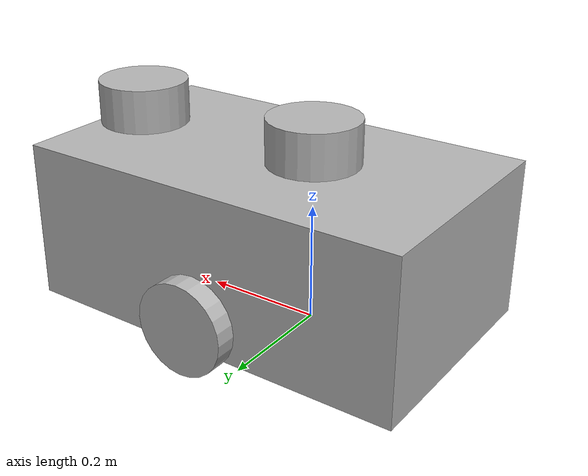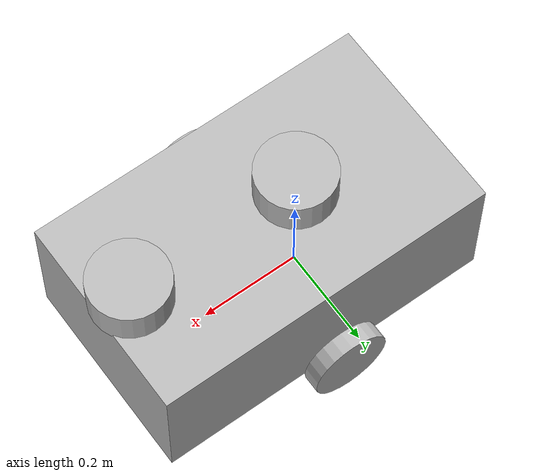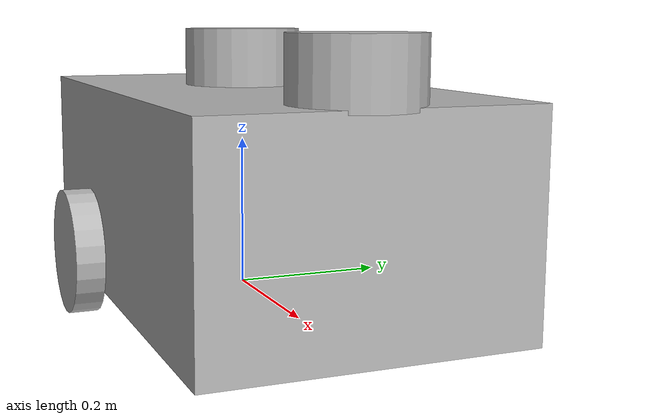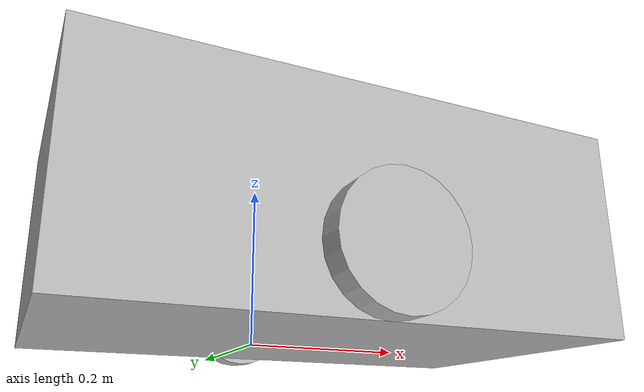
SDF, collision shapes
<sdf version='1.7'>
  <model name='cad_assembly_amr'>
    <link name='base_footprint'>
      <inertial>
        <pose>0.154135 0.128335 -0.030396 0 -0 0</pose>
        <mass>17.7243</mass>
        <inertia>
          <ixx>0.151726</ixx>
          <ixy>0</ixy>
          <ixz>0</ixz>
          <iyy>0.209426</iyy>
          <iyz>0</iyz>
          <izz>0.106435</izz>
        </inertia>
      </inertial>
      <collision name='base_footprint_fixed_joint_lump__base_link_collision'>
        <pose>0.075 0 0.14 0 -0 0</pose>
        <geometry>
          <box>
            <size>0.68 0.4 0.27</size>
          </box>
        </geometry>
      </collision>
      <collision name='base_footprint_fixed_joint_lump__imu_link_collision_1'>
        <pose>0 0 0.31 0 -0 0</pose>
        <geometry>
          <cylinder>
            <length>0.08</length>
            <radius>0.0767</radius>
          </cylinder>
        </geometry>
      </collision>
      <collision name='base_footprint_fixed_joint_lump__lidar_link_collision_2'>
        <pose>0.35 0 0.31 0 -0 0</pose>
        <geometry>
          <cylinder>
            <length>0.08</length>
            <radius>0.0767</radius>
          </cylinder>
        </geometry>
        <surface>
          <contact>
            <ode/>
          </contact>
          <friction>
            <ode/>
          </friction>
        </surface>
      </collision>
      <visual name='base_footprint_fixed_joint_lump__base_link_visual'>
        <pose>0 -0.031 0 0 -0 0</pose>
        <geometry>
          <mesh>
            <scale>1 1 1</scale>
            <uri>model://cad_assembly_amr/meshes/base_link.STL</uri>
          </mesh>
        </geometry>
      </visual>
      <visual name='base_footprint_fixed_joint_lump__imu_link_visual_1'>
        <pose>0 0 0.31 0 -0 0</pose>
        <geometry>
          <cylinder>
            <length>0.08</length>
            <radius>0.0767</radius>
          </cylinder>
        </geometry>
      </visual>
      <visual name='base_footprint_fixed_joint_lump__lidar_link_visual_2'>
        <pose>0.35 0 0.31 0 -0 0</pose>
        <geometry>
          <cylinder>
            <length>0.08</length>
            <radius>0.0767</radius>
          </cylinder>
        </geometry>
      </visual>
      <sensor name='head_hokuyo_sensor' type='gpu_ray'>
        <visualize>1</visualize>
        <update_rate>40</update_rate>
        <ray>
          <scan>
            <horizontal>
              <samples>720</samples>
              <resolution>1</resolution>
              <min_angle>-1.5708</min_angle>
              <max_angle>1.5708</max_angle>
            </horizontal>
          </scan>
          <range>
            <min>0.1</min>
            <max>30</max>
            <resolution>0.01</resolution>
          </range>
          <noise>
            <type>gaussian</type>
            <mean>0</mean>
            <stddev>0.01</stddev>
          </noise>
        </ray>
        <plugin name='gazebo_ros_head_hokuyo_controller' filename='libgazebo_ros_gpu_laser.so'>
          <topicName>/laser/scan</topicName>
          <frameName>lidar_link</frameName>
        </plugin>
        <pose>0.35 0 0.31 0 -0 0</pose>
      </sensor>
    </link>
    <joint name='left_joint' type='revolute'>
      <pose relative_to='base_footprint'>0.064918 -0.2 0.0767 0 -0 3.14</pose>
      <parent>base_footprint</parent>
      <child>wheel_l</child>
      <axis>
        <xyz>0 1 0</xyz>
        <limit>
          <lower>-1e+16</lower>
          <upper>1e+16</upper>
        </limit>
        <dynamics>
          <spring_reference>0</spring_reference>
          <spring_stiffness>0</spring_stiffness>
        </dynamics>
      </axis>
    </joint>
    <link name='wheel_l'>
      <pose relative_to='left_joint'>0 0 0 0 -0 0</pose>
      <inertial>
        <pose>0 0 0 0 -0 0</pose>
        <mass>1.1541</mass>
        <inertia>
          <ixx>0.0029866</ixx>
          <ixy>0</ixy>
          <ixz>0</ixz>
          <iyy>0.0016967</iyy>
          <iyz>0</iyz>
          <izz>0.0016788</izz>
        </inertia>
      </inertial>
      <collision name='wheel_l_collision'>
        <pose>0 0.042 0 1.57 -0 0</pose>
        <geometry>
          <cylinder>
            <length>0.035</length>
            <radius>0.0767</radius>
          </cylinder>
        </geometry>
      </collision>
      <visual name='wheel_l_visual'>
        <pose>0 0 0 0 -0 1.57</pose>
        <geometry>
          <mesh>
            <scale>1 1 1</scale>
            <uri>model://cad_assembly_amr/meshes/Wheel_2.STL</uri>
          </mesh>
        </geometry>
      </visual>
    </link>
    <joint name='right_joint' type='revolute'>
      <pose relative_to='base_footprint'>0.064918 0.2 0.0767 0 -0 0</pose>
      <parent>base_footprint</parent>
      <child>wheel_r</child>
      <axis>
        <xyz>0 -1 0</xyz>
        <limit>
          <lower>-3.1415</lower>
          <upper>3.1415</upper>
          <effort>30</effort>
          <velocity>5</velocity>
        </limit>
        <dynamics>
          <spring_reference>0</spring_reference>
          <spring_stiffness>0</spring_stiffness>
        </dynamics>
      </axis>
    </joint>
    <link name='wheel_r'>
      <pose relative_to='right_joint'>0 0 0 0 -0 0</pose>
      <inertial>
        <pose>0 0 0 0 -0 0</pose>
        <mass>1.1541</mass>
        <inertia>
          <ixx>0.0029866</ixx>
          <ixy>0</ixy>
          <ixz>0</ixz>
          <iyy>0.0016967</iyy>
          <iyz>0</iyz>
          <izz>0.0016788</izz>
        </inertia>
      </inertial>
      <collision name='wheel_r_collision'>
        <pose>0 0.042 0 1.57 -0 0</pose>
        <geometry>
          <cylinder>
            <length>0.035</length>
            <radius>0.0767</radius>
          </cylinder>
        </geometry>
      </collision>
      <visual name='wheel_r_visual'>
        <pose>0 0 0 0 -0 1.57</pose>
        <geometry>
          <mesh>
            <scale>1 1 1</scale>
            <uri>model://cad_assembly_amr/meshes/Wheel_2.STL</uri>
          </mesh>
        </geometry>
      </visual>
    </link>
    <static>0</static>
    <plugin name='differential_drive_controller' filename='libgazebo_ros_diff_drive.so'>
      <updateRate>40</updateRate>
      <leftJoint>left_joint</leftJoint>
      <rightJoint>right_joint</rightJoint>
      <wheelSeparation>0.4</wheelSeparation>
      <wheelDiameter>0.1534</wheelDiameter>
      <wheelAcceleration>1.0</wheelAcceleration>
      <wheelTorque>20</wheelTorque>
      <commandTopic>cmd_vel</commandTopic>
      <odometryTopic>odom</odometryTopic>
      <odometryFrame>odom</odometryFrame>
      <robotBaseFrame>base_footprint</robotBaseFrame>
      <odometrySource>1</odometrySource>
      <publishWheelTF>0</publishWheelTF>
      <publishOdom>0</publishOdom>
      <publishWheelJointState>0</publishWheelJointState>
      <legacyMode>0</legacyMode>
    </plugin>
    <plugin name='cad_assembly_amr_joint_state' filename='libgazebo_ros_joint_state_publisher.so'>
      <ros>
        <remapping>~/out:=joint_states</remapping>
      </ros>
      <update_rate>30</update_rate>
      <joint_name>left_joint</joint_name>
      <joint_name>right_joint</joint_name>
    </plugin>
  </model>
</sdf>
